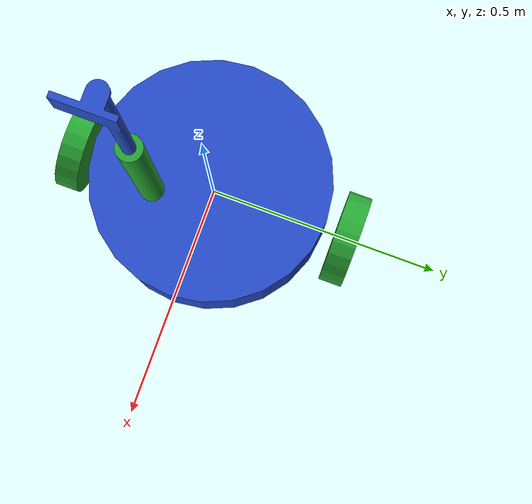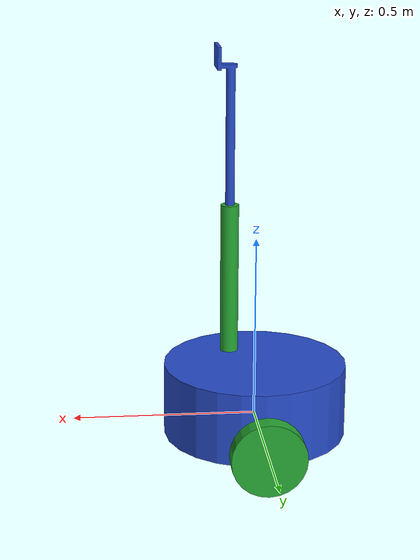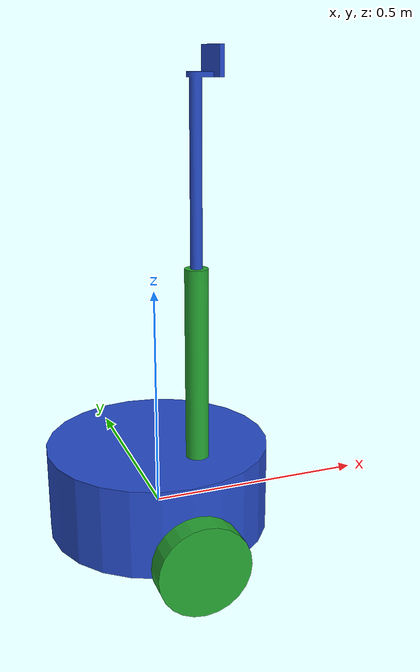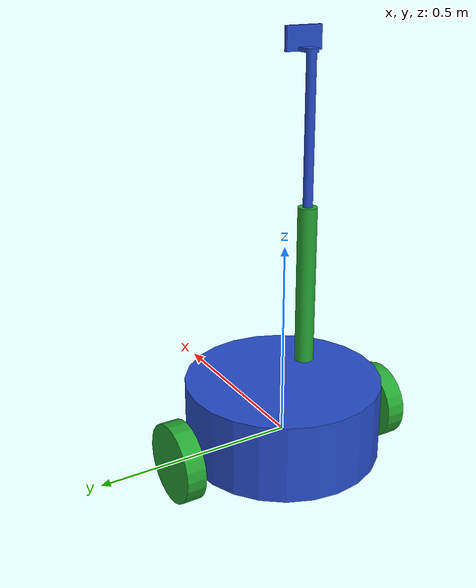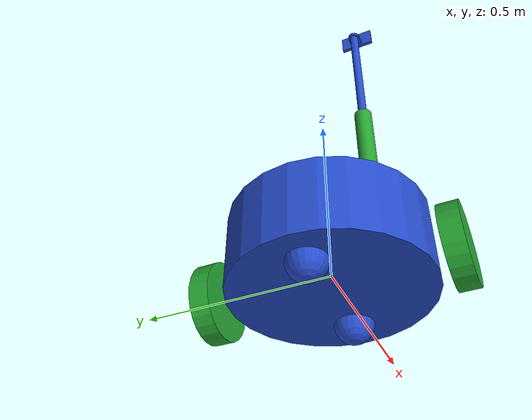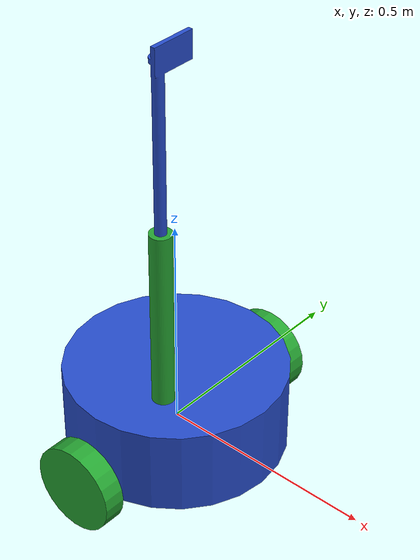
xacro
<?xml version='1.0'?>

<robot name="trixy" xmlns:xacro="http://www.ros.org/wiki/xacro">

  <xacro:include filename="$(find trixy)/urdf/trixy.gazebo" />

  <gazebo reference="left_wheel">
    <material>Gazebo/Green</material>
  </gazebo>

  <gazebo reference="right_wheel">
    <material>Gazebo/Green</material>
  </gazebo>

  <gazebo reference="rfid_holder">
    <material>Gazebo/Blue</material>
  </gazebo>

  <gazebo reference="rfid_slider_support">
    <material>Gazebo/Green</material>
  </gazebo>

  <gazebo reference="chassis">
    <material>Gazebo/Blue</material>
  </gazebo>
  <link name="robot_footprint"></link>

  <joint name="robot_footprint_joint" type="fixed">
    <origin xyz="0 0 0" rpy="0 0 0" />
    <parent link="robot_footprint"/>
    <child link="chassis" />
  </joint>

  <joint name="rfid_slider_support_joint" type="fixed">
    <origin xyz ="0 0 0" rpy="0 0 0"/>
    <parent link="robot_footprint"/>
    <child link="rfid_slider_support"/>
  </joint>

  <joint name="rfid_slider" type="prismatic">
  <origin xyz="0.0 0.0 0.0" rpy="0 0 0"/>
  <parent link="robot_footprint"/>
  <child link="rfid_holder"/>
    <axis xyz="0.0 0.0 1.0"/>
    <limit upper="1.0" lower="0.24" effort="100" velocity="100"/>
  </joint>

  <joint type="continuous" name="left_wheel_hinge">
    <origin xyz="0 0.30 0" rpy="0 0 0" />
    <parent link="chassis"/>
    <child link="left_wheel" />
    <axis xyz="0 1 0" rpy="0 0 0" />
    <limit effort="10000" velocity="1000" />
    <dynamics damping="1.0" friction="1.0" />
  </joint>

  <joint type="continuous" name="right_wheel_hinge">
    <origin xyz="0 -0.30 0" rpy="0 0 0" />
    <parent link="chassis"/>
    <child link="right_wheel" />
    <axis xyz="0 1 0" rpy="0 0 0" />
    <limit effort="10000" velocity="1000" />
    <dynamics damping="1.0" friction="1.0" />
  </joint>

  <link name="left_wheel">
    <inertial>
      <mass value="5"/>
      <origin xyz="0 0 0" rpy="0 1.5707 1.5707"/>
      <inertia
        ixx="0.1" ixy="0.0" ixz="0.0"
        iyy="0.1" iyz="0.0"
        izz="0.1"
      />
    </inertial>

    <collision>
      <origin xyz="0 0 0" rpy="0 1.5707 1.5707"/>
      <geometry>
        <cylinder radius="0.1" length="0.05"/>
      </geometry>
    </collision>

    <visual>
      <origin xyz="0 0 0" rpy="0 1.5707 1.5707"/>
      <geometry>
        <cylinder radius="0.1" length="0.05"/>
      </geometry>
    </visual>

  </link>

  <link name="right_wheel">
    <inertial>
      <mass value="5"/>
      <origin xyz="0 0 0" rpy="0 1.5707 1.5707"/>
      <inertia
        ixx="0.1" ixy="0.0" ixz="0.0"
        iyy="0.1" iyz="0.0"
        izz="0.1"
      />
    </inertial>

    <collision>
      <origin xyz="0 0 0" rpy="0 1.5707 1.5707"/>
      <geometry>
        <cylinder radius="0.1" length="0.05"/>
      </geometry>
    </collision>

    <visual>
      <origin xyz="0 0 0" rpy="0 1.5707 1.5707"/>
      <geometry>
        <cylinder radius="0.1" length="0.05"/>
      </geometry>
    </visual>

  </link>

 <link name='rfid_holder'>
   <inertial>
     <origin xyz="0.012285263888850092 -8.326672684688674e-17 0.20264251775704167" rpy="0 0 0"/>
     <mass value="1.4196602693651297"/>
     <inertia ixx="0.009879" iyy="0.009869" izz="0.000863" ixy="0.0" iyz="-0.0" ixz="-0.001412"/>
    </inertial>
    <visual>
     <origin xyz="0.1 0.1 -0.05" rpy="0 0 0.0"/>
     <geometry>
       <mesh filename="package://trixy/meshes/rfid_holder_2.stl" scale="0.001 0.001 0.001"/>
     </geometry>
   </visual>
   <collision>
      <origin xyz="0.1 0.1 -0.05" rpy="0 0 0.0"/>
      <geometry>
       <mesh filename="package://trixy/meshes/rfid_holder_2.stl" scale="0.001 0.001 0.001"/>
      </geometry>
    </collision>
  </link>

  <link name='rfid_slider_support'>
  <inertial>
     <origin xyz="0.012285263888850092 -8.326672684688674e-17 0.20264251775704167" rpy="0 0 0"/>
     <mass value="1.4196602693651297"/>
     <inertia ixx="0.009879" iyy="0.009869" izz="0.000863" ixy="0.0" iyz="-0.0" ixz="-0.001412"/>
    </inertial>

      <visual>
      <origin xyz="0.1 0.1 0" rpy="0 0 0"/>
      <geometry>
        <mesh filename="package://trixy/meshes/rfid_slider_support_1.stl" scale="0.001 0.001 0.001"/>
      </geometry>
    </visual>

    <collision>
      <origin xyz="0.1 0.1 0.0" rpy="0 0 0"/>
      <geometry>
       <mesh filename="package://trixy/meshes/rfid_slider_support_1.stl" scale="0.001 0.001 0.001"/>
      </geometry>
    </collision>

    </link>

  <link name='chassis'>
    <pose>1.34 3.78 0.35 0 0 0</pose>

    <inertial>
      <mass value="15.0"/>
      <origin xyz="0.0 0 0" rpy=" 0 0 0"/>
      <inertia
          ixx="0.1" ixy="0" ixz="0"
          iyy="0.1" iyz="0"
          izz="0.1"
      />
    </inertial>

    <collision name='collision'>
      <origin xyz="0 0 0.05" rpy=" 0 0 0"/>
      <geometry>
        <cylinder length="0.2" radius="0.25"/>
      </geometry>
    </collision>

    <visual name='chassis_visual'>
      <origin xyz="0 0 0.05" rpy=" 0 0 0"/>
      <geometry>
       <cylinder length="0.2" radius="0.25"/>
      </geometry>
    </visual>

    <collision name='back_caster_collision'>
      <origin xyz="-0.15 0 -0.05" rpy=" 0 0 0"/>
      <geometry>
        <sphere radius="0.0499"/>
      </geometry>
    </collision>

    <visual name='back_caster_visual'>
      <origin xyz="-0.15 0 -0.05" rpy=" 0 0 0"/>
      <geometry>
        <sphere radius="0.05"/>
      </geometry>
    </visual>

    <collision name='front_caster_collision'>
      <origin xyz="0.15 0 -0.05" rpy=" 0 0 0"/>
      <geometry>
        <sphere radius="0.0499"/>
      </geometry>
    </collision>

    <visual name='front_caster_visual'>
      <origin xyz="0.15 0 -0.05" rpy=" 0 0 0"/>
      <geometry>
        <sphere radius="0.05"/>
      </geometry>
    </visual>

  </link>

</robot>
